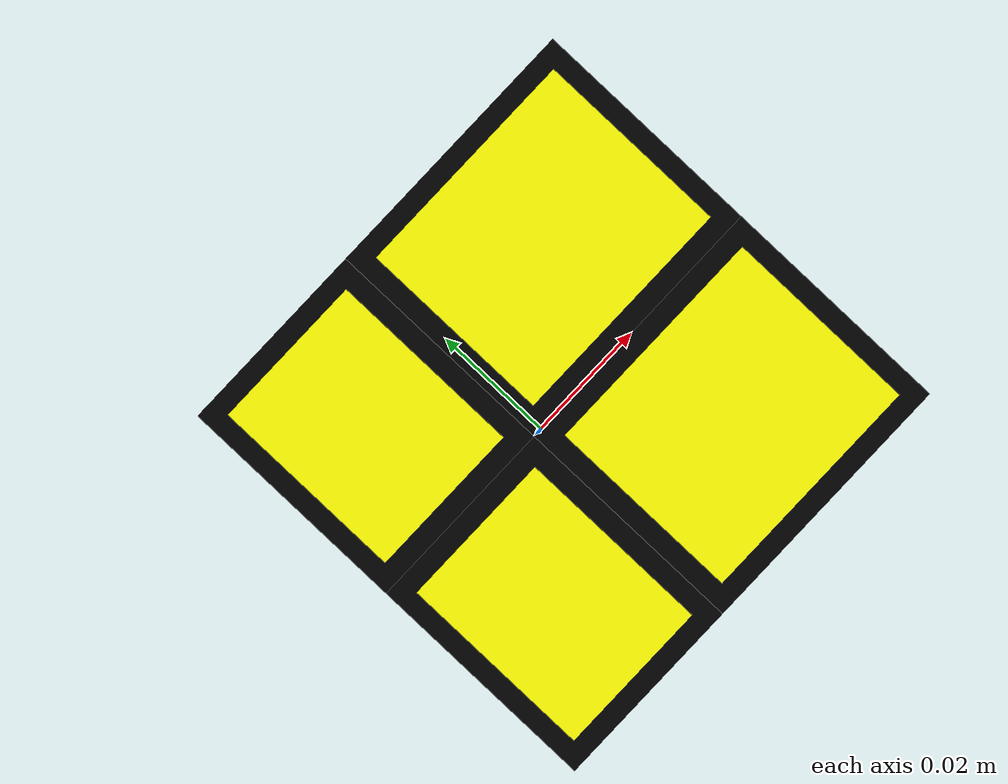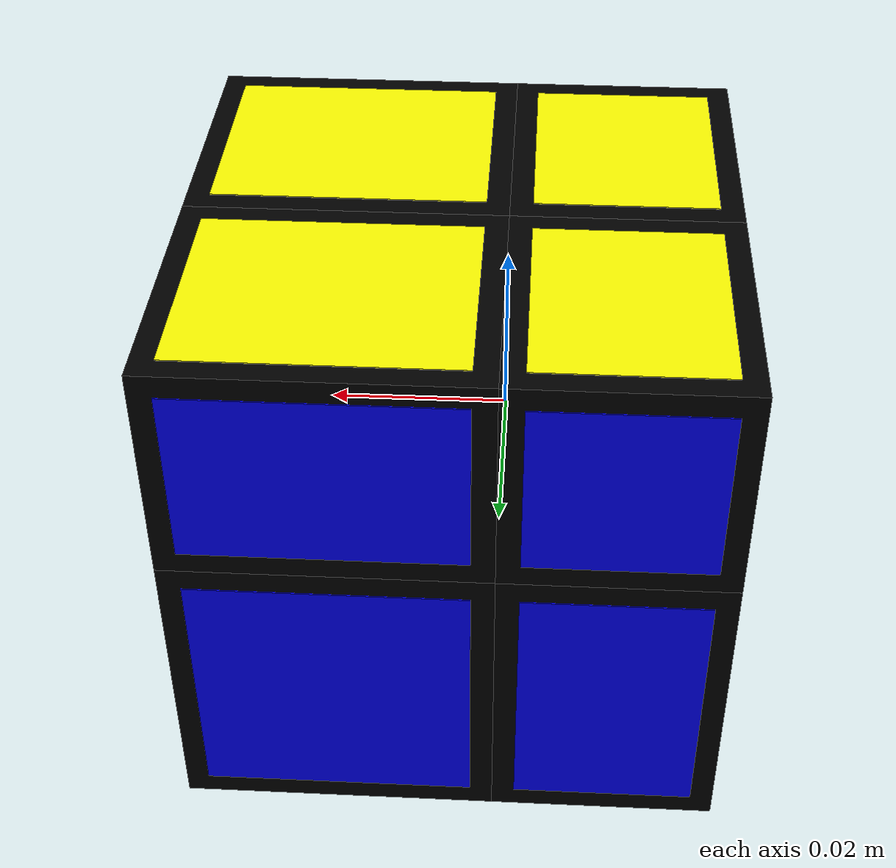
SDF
<?xml version="1.0" ?>
<sdf version="1.7">
	<model name="mirror_cube_2x2">
		<link name="center"/>
		<link name="cubie_0_0_0">
			<pose>-0.0125 -0.015 -0.0175 0.0 0.0 0.0</pose>
			<inertial>
				<mass>1.0237500000000002e-05</mass>
				<inertia>
					<ixx>1.8128906250000003e-09</ixx>
					<ixy>0.0</ixy>
					<ixz>0.0</ixz>
					<iyy>1.5782812500000005e-09</iyy>
					<iyz>0.0</iyz>
					<izz>1.3010156250000002e-09</izz>
				</inertia>
			</inertial>
			<collision name="collision">
				<geometry>
					<box>
						<size>0.025 0.03 0.035</size>
					</box>
				</geometry>
			</collision>
			<visual name="black">
				<geometry>
					<box>
						<size>0.025 0.03 0.035</size>
					</box>
				</geometry>
				<material>
					<diffuse>0 0 0 1</diffuse>
				</material>
			</visual>
			<visual name="red">
				<pose>-0.0125 0.0 0.0 0.0 0.0 0.0</pose>
				<geometry>
					<box>
						<size>0.0002 0.025 0.03</size>
					</box>
				</geometry>
				<material>
					<diffuse>1 0 0 1</diffuse>
				</material>
			</visual>
			<visual name="green">
				<pose>0.0 -0.015 0.0 0.0 0.0 0.0</pose>
				<geometry>
					<box>
						<size>0.02 0.00025 0.03</size>
					</box>
				</geometry>
				<material>
					<diffuse>0 1 0 1</diffuse>
				</material>
			</visual>
			<visual name="white">
				<pose>0.0 0.0 -0.0175 0.0 0.0 0.0</pose>
				<geometry>
					<box>
						<size>0.02 0.025 0.0003</size>
					</box>
				</geometry>
				<material>
					<diffuse>1 1 1 1</diffuse>
				</material>
			</visual>
		</link>
		<joint name="ball_0_0_0" type="ball">
			<pose>0.0125 0.015 0.0175 -0.0 -0.0 -0.0</pose>
			<parent>center</parent>
			<child>cubie_0_0_0</child>
			<axis>
				<dynamics>
					<damping>0.1</damping>
				</dynamics>
				<limit>
					<effort>0</effort>
				</limit>
			</axis>
		</joint>
		<link name="cubie_0_0_1">
			<pose>-0.0125 -0.015 0.012499999999999997 0.0 0.0 0.0</pose>
			<inertial>
				<mass>7.312499999999998e-06</mass>
				<inertia>
					<ixx>9.292968749999996e-10</ixx>
					<ixy>0.0</ixy>
					<ixz>0.0</ixz>
					<iyy>7.617187499999997e-10</iyy>
					<iyz>0.0</iyz>
					<izz>9.292968749999999e-10</izz>
				</inertia>
			</inertial>
			<collision name="collision">
				<geometry>
					<box>
						<size>0.025 0.03 0.024999999999999994</size>
					</box>
				</geometry>
			</collision>
			<visual name="black">
				<geometry>
					<box>
						<size>0.025 0.03 0.024999999999999994</size>
					</box>
				</geometry>
				<material>
					<diffuse>0 0 0 1</diffuse>
				</material>
			</visual>
			<visual name="red">
				<pose>-0.0125 0.0 0.0 0.0 0.0 0.0</pose>
				<geometry>
					<box>
						<size>0.0002 0.025 0.02</size>
					</box>
				</geometry>
				<material>
					<diffuse>1 0 0 1</diffuse>
				</material>
			</visual>
			<visual name="green">
				<pose>0.0 -0.015 0.0 0.0 0.0 0.0</pose>
				<geometry>
					<box>
						<size>0.02 0.00025 0.02</size>
					</box>
				</geometry>
				<material>
					<diffuse>0 1 0 1</diffuse>
				</material>
			</visual>
			<visual name="yellow">
				<pose>0.0 0.0 0.012499999999999997 0.0 0.0 0.0</pose>
				<geometry>
					<box>
						<size>0.02 0.025 0.0002</size>
					</box>
				</geometry>
				<material>
					<diffuse>1 1 0 1</diffuse>
				</material>
			</visual>
		</link>
		<joint name="ball_0_0_1" type="ball">
			<pose>0.0125 0.015 -0.012499999999999997 -0.0 -0.0 -0.0</pose>
			<parent>center</parent>
			<child>cubie_0_0_1</child>
			<axis>
				<dynamics>
					<damping>0.1</damping>
				</dynamics>
				<limit>
					<effort>0</effort>
				</limit>
			</axis>
		</joint>
		<link name="cubie_0_1_0">
			<pose>-0.0125 0.015 -0.0175 0.0 0.0 0.0</pose>
			<inertial>
				<mass>1.0237500000000002e-05</mass>
				<inertia>
					<ixx>1.8128906250000003e-09</ixx>
					<ixy>0.0</ixy>
					<ixz>0.0</ixz>
					<iyy>1.5782812500000005e-09</iyy>
					<iyz>0.0</iyz>
					<izz>1.3010156250000002e-09</izz>
				</inertia>
			</inertial>
			<collision name="collision">
				<geometry>
					<box>
						<size>0.025 0.03 0.035</size>
					</box>
				</geometry>
			</collision>
			<visual name="black">
				<geometry>
					<box>
						<size>0.025 0.03 0.035</size>
					</box>
				</geometry>
				<material>
					<diffuse>0 0 0 1</diffuse>
				</material>
			</visual>
			<visual name="red">
				<pose>-0.0125 0.0 0.0 0.0 0.0 0.0</pose>
				<geometry>
					<box>
						<size>0.0002 0.025 0.03</size>
					</box>
				</geometry>
				<material>
					<diffuse>1 0 0 1</diffuse>
				</material>
			</visual>
			<visual name="blue">
				<pose>0.0 0.015 0.0 0.0 0.0 0.0</pose>
				<geometry>
					<box>
						<size>0.02 0.00025 0.03</size>
					</box>
				</geometry>
				<material>
					<diffuse>0 0 1 1</diffuse>
				</material>
			</visual>
			<visual name="white">
				<pose>0.0 0.0 -0.0175 0.0 0.0 0.0</pose>
				<geometry>
					<box>
						<size>0.02 0.025 0.0003</size>
					</box>
				</geometry>
				<material>
					<diffuse>1 1 1 1</diffuse>
				</material>
			</visual>
		</link>
		<joint name="ball_0_1_0" type="ball">
			<pose>0.0125 -0.015 0.0175 -0.0 -0.0 -0.0</pose>
			<parent>center</parent>
			<child>cubie_0_1_0</child>
			<axis>
				<dynamics>
					<damping>0.1</damping>
				</dynamics>
				<limit>
					<effort>0</effort>
				</limit>
			</axis>
		</joint>
		<link name="cubie_0_1_1">
			<pose>-0.0125 0.015 0.012499999999999997 0.0 0.0 0.0</pose>
			<inertial>
				<mass>7.312499999999998e-06</mass>
				<inertia>
					<ixx>9.292968749999996e-10</ixx>
					<ixy>0.0</ixy>
					<ixz>0.0</ixz>
					<iyy>7.617187499999997e-10</iyy>
					<iyz>0.0</iyz>
					<izz>9.292968749999999e-10</izz>
				</inertia>
			</inertial>
			<collision name="collision">
				<geometry>
					<box>
						<size>0.025 0.03 0.024999999999999994</size>
					</box>
				</geometry>
			</collision>
			<visual name="black">
				<geometry>
					<box>
						<size>0.025 0.03 0.024999999999999994</size>
					</box>
				</geometry>
				<material>
					<diffuse>0 0 0 1</diffuse>
				</material>
			</visual>
			<visual name="red">
				<pose>-0.0125 0.0 0.0 0.0 0.0 0.0</pose>
				<geometry>
					<box>
						<size>0.0002 0.025 0.02</size>
					</box>
				</geometry>
				<material>
					<diffuse>1 0 0 1</diffuse>
				</material>
			</visual>
			<visual name="blue">
				<pose>0.0 0.015 0.0 0.0 0.0 0.0</pose>
				<geometry>
					<box>
						<size>0.02 0.00025 0.02</size>
					</box>
				</geometry>
				<material>
					<diffuse>0 0 1 1</diffuse>
				</material>
			</visual>
			<visual name="yellow">
				<pose>0.0 0.0 0.012499999999999997 0.0 0.0 0.0</pose>
				<geometry>
					<box>
						<size>0.02 0.025 0.0002</size>
					</box>
				</geometry>
				<material>
					<diffuse>1 1 0 1</diffuse>
				</material>
			</visual>
		</link>
		<joint name="ball_0_1_1" type="ball">
			<pose>0.0125 -0.015 -0.012499999999999997 -0.0 -0.0 -0.0</pose>
			<parent>center</parent>
			<child>cubie_0_1_1</child>
			<axis>
				<dynamics>
					<damping>0.1</damping>
				</dynamics>
				<limit>
					<effort>0</effort>
				</limit>
			</axis>
		</joint>
		<link name="cubie_1_0_0">
			<pose>0.017499999999999998 -0.015 -0.0175 0.0 0.0 0.0</pose>
			<inertial>
				<mass>1.43325e-05</mass>
				<inertia>
					<ixx>2.5380468750000006e-09</ixx>
					<ixy>0.0</ixy>
					<ixz>0.0</ixz>
					<iyy>2.9262187500000003e-09</iyy>
					<iyz>0.0</iyz>
					<izz>2.5380468749999998e-09</izz>
				</inertia>
			</inertial>
			<collision name="collision">
				<geometry>
					<box>
						<size>0.034999999999999996 0.03 0.035</size>
					</box>
				</geometry>
			</collision>
			<visual name="black">
				<geometry>
					<box>
						<size>0.034999999999999996 0.03 0.035</size>
					</box>
				</geometry>
				<material>
					<diffuse>0 0 0 1</diffuse>
				</material>
			</visual>
			<visual name="orange">
				<pose>0.017499999999999998 0.0 0.0 0.0 0.0 0.0</pose>
				<geometry>
					<box>
						<size>0.0003 0.025 0.03</size>
					</box>
				</geometry>
				<material>
					<diffuse>1.0 0.5 0.0 1.0</diffuse>
				</material>
			</visual>
			<visual name="green">
				<pose>0.0 -0.015 0.0 0.0 0.0 0.0</pose>
				<geometry>
					<box>
						<size>0.03 0.00025 0.03</size>
					</box>
				</geometry>
				<material>
					<diffuse>0 1 0 1</diffuse>
				</material>
			</visual>
			<visual name="white">
				<pose>0.0 0.0 -0.0175 0.0 0.0 0.0</pose>
				<geometry>
					<box>
						<size>0.03 0.025 0.0003</size>
					</box>
				</geometry>
				<material>
					<diffuse>1 1 1 1</diffuse>
				</material>
			</visual>
		</link>
		<joint name="ball_1_0_0" type="ball">
			<pose>-0.017499999999999998 0.015 0.0175 -0.0 -0.0 -0.0</pose>
			<parent>center</parent>
			<child>cubie_1_0_0</child>
			<axis>
				<dynamics>
					<damping>0.1</damping>
				</dynamics>
				<limit>
					<effort>0</effort>
				</limit>
			</axis>
		</joint>
		<link name="cubie_1_0_1">
			<pose>0.017499999999999998 -0.015 0.012499999999999997 0.0 0.0 0.0</pose>
			<inertial>
				<mass>1.0237499999999996e-05</mass>
				<inertia>
					<ixx>1.3010156249999991e-09</ixx>
					<ixy>0.0</ixy>
					<ixz>0.0</ixz>
					<iyy>1.5782812499999988e-09</iyy>
					<iyz>0.0</iyz>
					<izz>1.812890624999999e-09</izz>
				</inertia>
			</inertial>
			<collision name="collision">
				<geometry>
					<box>
						<size>0.034999999999999996 0.03 0.024999999999999994</size>
					</box>
				</geometry>
			</collision>
			<visual name="black">
				<geometry>
					<box>
						<size>0.034999999999999996 0.03 0.024999999999999994</size>
					</box>
				</geometry>
				<material>
					<diffuse>0 0 0 1</diffuse>
				</material>
			</visual>
			<visual name="orange">
				<pose>0.017499999999999998 0.0 0.0 0.0 0.0 0.0</pose>
				<geometry>
					<box>
						<size>0.0003 0.025 0.02</size>
					</box>
				</geometry>
				<material>
					<diffuse>1.0 0.5 0.0 1.0</diffuse>
				</material>
			</visual>
			<visual name="green">
				<pose>0.0 -0.015 0.0 0.0 0.0 0.0</pose>
				<geometry>
					<box>
						<size>0.03 0.00025 0.02</size>
					</box>
				</geometry>
				<material>
					<diffuse>0 1 0 1</diffuse>
				</material>
			</visual>
			<visual name="yellow">
				<pose>0.0 0.0 0.012499999999999997 0.0 0.0 0.0</pose>
				<geometry>
					<box>
						<size>0.03 0.025 0.0002</size>
					</box>
				</geometry>
				<material>
					<diffuse>1 1 0 1</diffuse>
				</material>
			</visual>
		</link>
		<joint name="ball_1_0_1" type="ball">
			<pose>-0.017499999999999998 0.015 -0.012499999999999997 -0.0 -0.0 -0.0</pose>
			<parent>center</parent>
			<child>cubie_1_0_1</child>
			<axis>
				<dynamics>
					<damping>0.1</damping>
				</dynamics>
				<limit>
					<effort>0</effort>
				</limit>
			</axis>
		</joint>
		<link name="cubie_1_1_0">
			<pose>0.017499999999999998 0.015 -0.0175 0.0 0.0 0.0</pose>
			<inertial>
				<mass>1.43325e-05</mass>
				<inertia>
					<ixx>2.5380468750000006e-09</ixx>
					<ixy>0.0</ixy>
					<ixz>0.0</ixz>
					<iyy>2.9262187500000003e-09</iyy>
					<iyz>0.0</iyz>
					<izz>2.5380468749999998e-09</izz>
				</inertia>
			</inertial>
			<collision name="collision">
				<geometry>
					<box>
						<size>0.034999999999999996 0.03 0.035</size>
					</box>
				</geometry>
			</collision>
			<visual name="black">
				<geometry>
					<box>
						<size>0.034999999999999996 0.03 0.035</size>
					</box>
				</geometry>
				<material>
					<diffuse>0 0 0 1</diffuse>
				</material>
			</visual>
			<visual name="orange">
				<pose>0.017499999999999998 0.0 0.0 0.0 0.0 0.0</pose>
				<geometry>
					<box>
						<size>0.0003 0.025 0.03</size>
					</box>
				</geometry>
				<material>
					<diffuse>1.0 0.5 0.0 1.0</diffuse>
				</material>
			</visual>
			<visual name="blue">
				<pose>0.0 0.015 0.0 0.0 0.0 0.0</pose>
				<geometry>
					<box>
						<size>0.03 0.00025 0.03</size>
					</box>
				</geometry>
				<material>
					<diffuse>0 0 1 1</diffuse>
				</material>
			</visual>
			<visual name="white">
				<pose>0.0 0.0 -0.0175 0.0 0.0 0.0</pose>
				<geometry>
					<box>
						<size>0.03 0.025 0.0003</size>
					</box>
				</geometry>
				<material>
					<diffuse>1 1 1 1</diffuse>
				</material>
			</visual>
		</link>
		<joint name="ball_1_1_0" type="ball">
			<pose>-0.017499999999999998 -0.015 0.0175 -0.0 -0.0 -0.0</pose>
			<parent>center</parent>
			<child>cubie_1_1_0</child>
			<axis>
				<dynamics>
					<damping>0.1</damping>
				</dynamics>
				<limit>
					<effort>0</effort>
				</limit>
			</axis>
		</joint>
		<link name="cubie_1_1_1">
			<pose>0.017499999999999998 0.015 0.012499999999999997 0.0 0.0 0.0</pose>
			<inertial>
				<mass>1.0237499999999996e-05</mass>
				<inertia>
					<ixx>1.3010156249999991e-09</ixx>
					<ixy>0.0</ixy>
					<ixz>0.0</ixz>
					<iyy>1.5782812499999988e-09</iyy>
					<iyz>0.0</iyz>
					<izz>1.812890624999999e-09</izz>
				</inertia>
			</inertial>
			<collision name="collision">
				<geometry>
					<box>
						<size>0.034999999999999996 0.03 0.024999999999999994</size>
					</box>
				</geometry>
			</collision>
			<visual name="black">
				<geometry>
					<box>
						<size>0.034999999999999996 0.03 0.024999999999999994</size>
					</box>
				</geometry>
				<material>
					<diffuse>0 0 0 1</diffuse>
				</material>
			</visual>
			<visual name="orange">
				<pose>0.017499999999999998 0.0 0.0 0.0 0.0 0.0</pose>
				<geometry>
					<box>
						<size>0.0003 0.025 0.02</size>
					</box>
				</geometry>
				<material>
					<diffuse>1.0 0.5 0.0 1.0</diffuse>
				</material>
			</visual>
			<visual name="blue">
				<pose>0.0 0.015 0.0 0.0 0.0 0.0</pose>
				<geometry>
					<box>
						<size>0.03 0.00025 0.02</size>
					</box>
				</geometry>
				<material>
					<diffuse>0 0 1 1</diffuse>
				</material>
			</visual>
			<visual name="yellow">
				<pose>0.0 0.0 0.012499999999999997 0.0 0.0 0.0</pose>
				<geometry>
					<box>
						<size>0.03 0.025 0.0002</size>
					</box>
				</geometry>
				<material>
					<diffuse>1 1 0 1</diffuse>
				</material>
			</visual>
		</link>
		<joint name="ball_1_1_1" type="ball">
			<pose>-0.017499999999999998 -0.015 -0.012499999999999997 -0.0 -0.0 -0.0</pose>
			<parent>center</parent>
			<child>cubie_1_1_1</child>
			<axis>
				<dynamics>
					<damping>0.1</damping>
				</dynamics>
				<limit>
					<effort>0</effort>
				</limit>
			</axis>
		</joint>
	</model>
</sdf>
